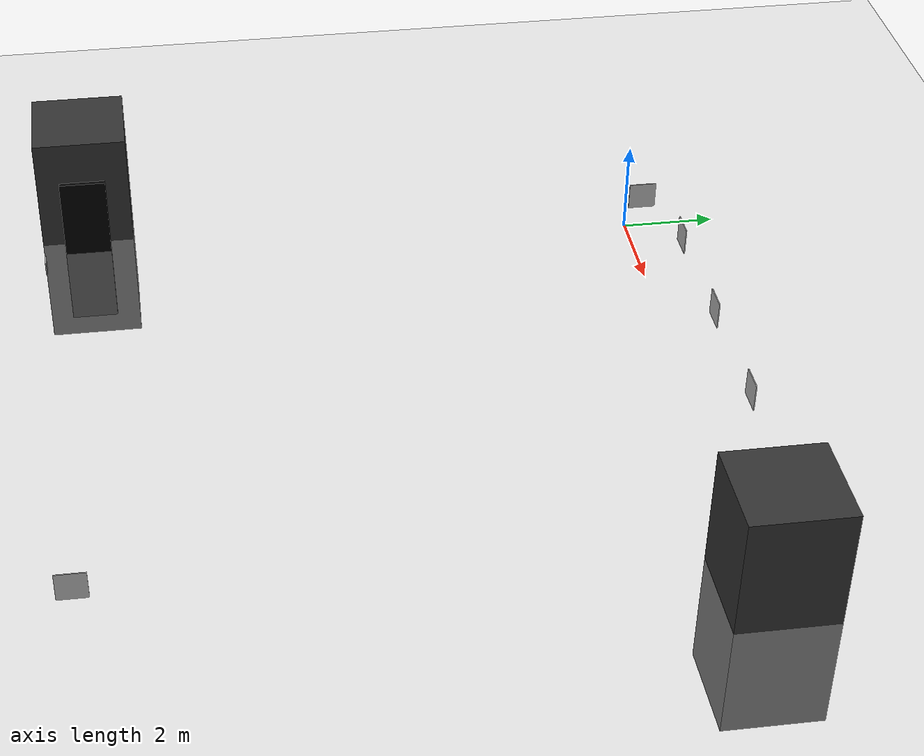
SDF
<sdf version="1.6">
 <world name="warehouse_world">
  <include><uri>model://ground_plane</uri></include>
  <include><uri>model://sun</uri></include>
  <model name="marker_grocery">
   <static>true</static>
   <pose>1.2 1 0.45 0 0 0</pose>
   <link name="link">
    <visual name="visual">
     <geometry><box><size>0.6 0.02 0.6</size></box></geometry>
     <material>
      <script>
       <uri>file:///home/shourya007/miniprjct_ws/src/mobile_robot/aruco</uri>
       <name>GroceryMarker</name>
      </script>
     </material>
    </visual>
   </link>
  </model>
  <model name="marker_meat">
   <static>true</static>
   <pose>4.0 1 0.45 0 0 0</pose>
   <link name="link">
    <visual name="visual">
     <geometry><box><size>0.6 0.02 0.6</size></box></geometry>
     <material>
      <script><uri>file:///home/shourya007/miniprjct_ws/src/mobile_robot/aruco</uri><name>MeatMarker</name></script>
     </material>
    </visual>
   </link>
  </model>
  <model name="marker_dairy">
   <static>true</static>
   <pose>6.8 1 0.45 0 0 0</pose>
   <link name="link">
    <visual name="visual">
     <geometry><box><size>0.6 0.02 0.6</size></box></geometry>
     <material>
      <script>
       <uri>file:///home/shourya007/miniprjct_ws/src/mobile_robot/aruco</uri>
       <name>DairyMarker</name>
      </script>
     </material>
    </visual>
   </link>
  </model>
  <model name="marker_packaged">
   <static>true</static>
   <pose>9.3 1 0.45 0 0 0</pose>
   <link name="link">
    <visual name="visual">
     <geometry><box><size>0.6 0.02 0.6</size></box></geometry>
     <material>
      <script>
       <uri>file:///home/shourya007/miniprjct_ws/src/mobile_robot/aruco</uri>
       <name>PackagedMarker</name>
      </script>
     </material>
    </visual>
   </link>
  </model>
  <model name="marker_4">
   <static>true</static>
   <pose>0.5 -12.9 0.45 0 0 0</pose>
   <link name="link">
    <visual name="visual">
     <geometry><box><size>0.3 0.02 0.3</size></box></geometry>
     <material>
      <script><uri>file:///home/shourya007/miniprjct_ws/src/mobile_robot/aruco</uri><name>Marker4</name></script>
     </material>
    </visual>
   </link>
  </model>
  <model name="marker_5">
   <static>true</static>
   <pose>10.7 -12.5 0.45 0 0 1.57</pose>
   <link name="link">
    <visual name="visual">
     <geometry><box><size>0.6 0.02 0.6</size></box></geometry>
     <material>
      <script><uri>file:///home/shourya007/miniprjct_ws/src/mobile_robot/aruco</uri><name>Marker5</name></script>
     </material>
    </visual>
   </link>
  </model>
  <model name="marker_6">
   <static>true</static>
   <pose>-0.5 0.5 0.45 0 0 1.57</pose>
   <link name="link">
    <visual name="visual">
     <geometry><box><size>0.6 0.02 0.6</size></box></geometry>
     <material>
      <script><uri>file:///home/shourya007/miniprjct_ws/src/mobile_robot/aruco</uri><name>Marker6</name></script>
     </material>
    </visual>
   </link>
  </model>
  <model name="room_1">
   <pose>12 0 0 0 0 0</pose>
   <link name="link">
    <collision name="collision"><geometry><box><size>2 2 5</size></box></geometry></collision>
    <visual name="visual">
     <geometry><box><size>2 2 5</size></box></geometry>
     <material><ambient>0.2 0.2 0.2 1</ambient><diffuse>0.2 0.2 0.2 1</diffuse></material>
    </visual>
   </link>
   <static>true</static>
  </model>
  <model name="room_2">
   <pose>-2 -12 0 0 0 0</pose>
   <link name="link">
    <collision name="collision"><geometry><box><size>2 2 5</size></box></geometry></collision>
    <visual name="visual">
     <geometry><box><size>2 2 5</size></box></geometry>
     <material><ambient>0.2 0.2 0.2 1</ambient><diffuse>0.2 0.2 0.2 1</diffuse></material>
    </visual>
   </link>
   <static>true</static>
  </model>
  <model name="door_2">
   <pose>-0.63 -12 0 0 0 0</pose>
   <link name="link">
    <visual name="visual">
     <geometry><box><size>0.1 1 3.5</size></box></geometry>
     <material><ambient>0 0 0 1</ambient><diffuse>0 0 0 1</diffuse></material>
    </visual>
   </link>
   <static>true</static>
  </model>
  <model name="door_1">
   <pose>10.8 0 0 0 0 0</pose>
   <link name="link">
    <visual name="visual">
     <geometry><box><size>0.1 1 3.5</size></box></geometry>
     <material><ambient>0 0 0 1</ambient><diffuse>0 0 0 1</diffuse></material>
    </visual>
   </link>
   <static>true</static>
  </model>
 </world>
</sdf>
